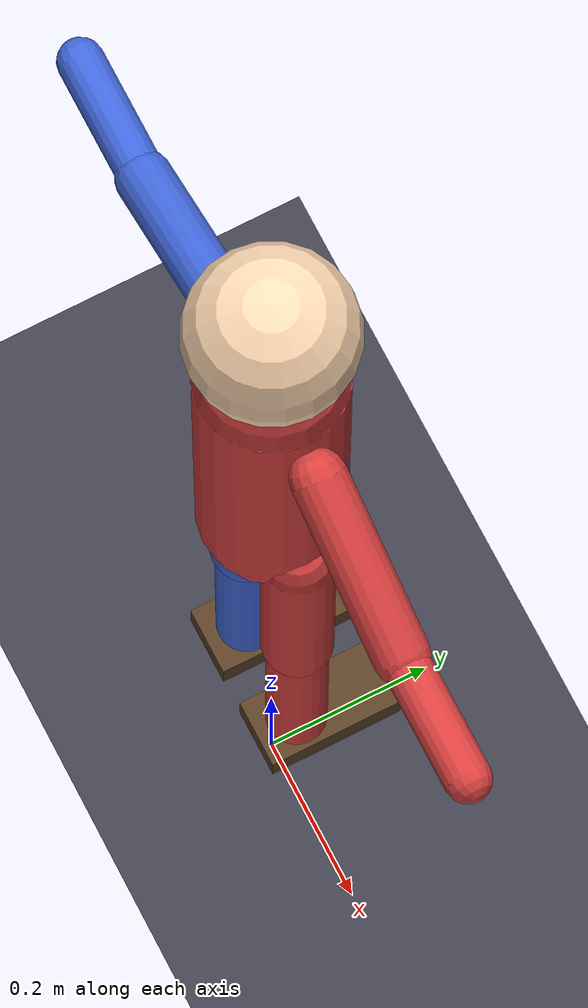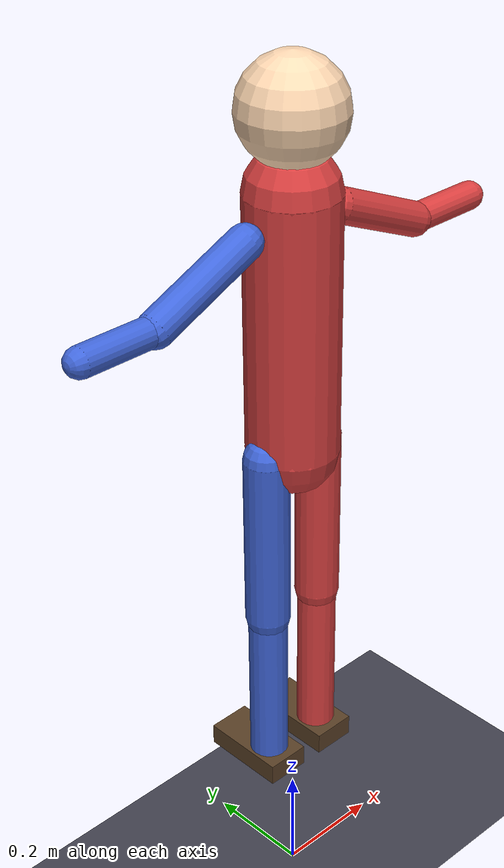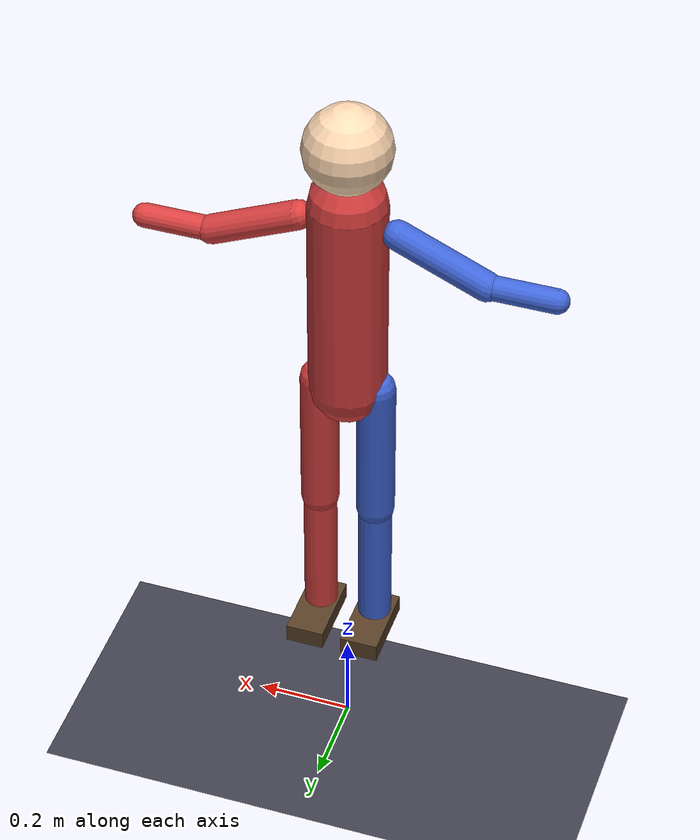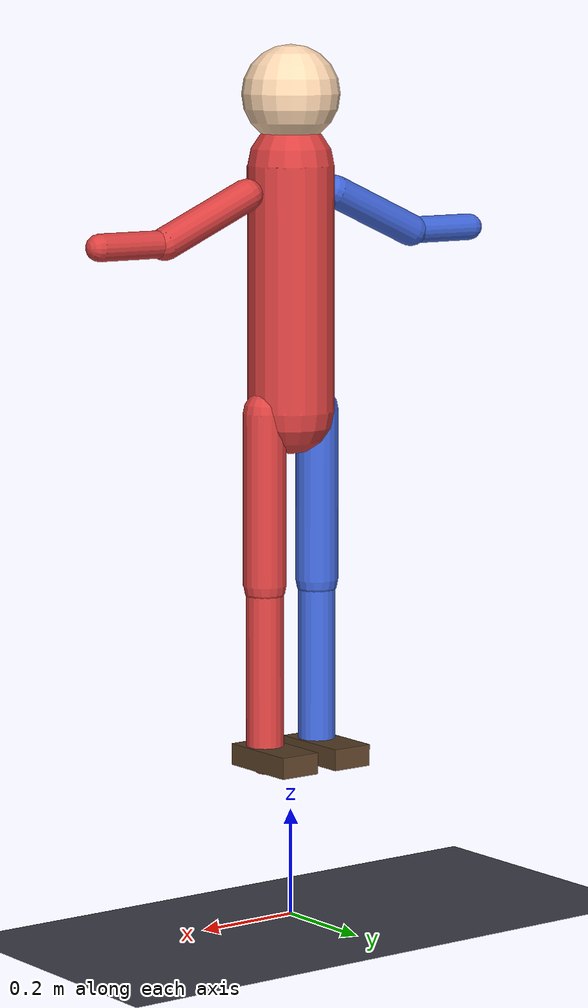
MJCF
<mujoco model="humanoid_stick">
  <option gravity="0 0 -9.81" timestep="0.005"/>
  <default>
    <joint damping="3" armature="0.1"/>
    <geom friction="0.8 0.02 0.02" condim="3"/>
  </default>
  <worldbody>
    <light pos="0 0 5" diffuse="0.9 0.9 0.9"/>
    <geom name="floor" type="plane" size="5 5 0.1" rgba="0.25 0.25 0.3 1"/>
    <body name="torso" pos="0 0 1.05">
      <freejoint name="root"/>
      <geom name="torso_geom" type="capsule" fromto="0 0 -0.1 0 0 0.35"
            size="0.08" rgba="0.85 0.25 0.25 1" mass="4"/>
      <geom name="head" type="sphere" pos="0 0 0.48" size="0.09"
            rgba="1 0.85 0.7 1" mass="0.8"/>
      <!-- Right arm -->
      <body name="r_upper_arm" pos="0.1 0 0.3">
        <joint name="r_shoulder" type="hinge" axis="0 1 0" range="-180 60"/>
        <geom type="capsule" fromto="0 0 0 0.18 0 -0.08" size="0.03"
              rgba="0.85 0.25 0.25 1" mass="0.4"/>
        <body name="r_forearm" pos="0.18 0 -0.08">
          <joint name="r_elbow" type="hinge" axis="0 1 0" range="-150 0"/>
          <geom type="capsule" fromto="0 0 0 0.14 0 0" size="0.025"
                rgba="0.85 0.25 0.25 1" mass="0.25"/>
        </body>
      </body>
      <!-- Left arm -->
      <body name="l_upper_arm" pos="-0.1 0 0.3">
        <joint name="l_shoulder" type="hinge" axis="0 1 0" range="-180 60"/>
        <geom type="capsule" fromto="0 0 0 -0.18 0 -0.08" size="0.03"
              rgba="0.25 0.4 0.85 1" mass="0.4"/>
        <body name="l_forearm" pos="-0.18 0 -0.08">
          <joint name="l_elbow" type="hinge" axis="0 1 0" range="-150 0"/>
          <geom type="capsule" fromto="0 0 0 -0.14 0 0" size="0.025"
                rgba="0.25 0.4 0.85 1" mass="0.25"/>
        </body>
      </body>
      <!-- Right leg -->
      <body name="r_thigh" pos="0.06 0 -0.1">
        <joint name="r_hip" type="hinge" axis="0 1 0" range="-30 120"/>
        <geom type="capsule" fromto="0 0 0 0 0 -0.32" size="0.04"
              rgba="0.85 0.25 0.25 1" mass="1.2"/>
        <body name="r_shin" pos="0 0 -0.32">
          <joint name="r_knee" type="hinge" axis="0 1 0" range="-130 0"/>
          <geom type="capsule" fromto="0 0 0 0 0 -0.32" size="0.035"
                rgba="0.85 0.25 0.25 1" mass="0.8"/>
          <geom name="r_foot" type="box" pos="0 0.03 -0.32"
                size="0.04 0.08 0.02" rgba="0.35 0.25 0.15 1" mass="0.3"/>
        </body>
      </body>
      <!-- Left leg -->
      <body name="l_thigh" pos="-0.06 0 -0.1">
        <joint name="l_hip" type="hinge" axis="0 1 0" range="-30 120"/>
        <geom type="capsule" fromto="0 0 0 0 0 -0.32" size="0.04"
              rgba="0.25 0.4 0.85 1" mass="1.2"/>
        <body name="l_shin" pos="0 0 -0.32">
          <joint name="l_knee" type="hinge" axis="0 1 0" range="-130 0"/>
          <geom type="capsule" fromto="0 0 0 0 0 -0.32" size="0.035"
                rgba="0.25 0.4 0.85 1" mass="0.8"/>
          <geom name="l_foot" type="box" pos="0 0.03 -0.32"
                size="0.04 0.08 0.02" rgba="0.35 0.25 0.15 1" mass="0.3"/>
        </body>
      </body>
    </body>
  </worldbody>
  <actuator>
    <motor name="r_hip_m" joint="r_hip" ctrlrange="-80 80" ctrllimited="true"/>
    <motor name="l_hip_m" joint="l_hip" ctrlrange="-80 80" ctrllimited="true"/>
    <motor name="r_knee_m" joint="r_knee" ctrlrange="-80 80" ctrllimited="true"/>
    <motor name="l_knee_m" joint="l_knee" ctrlrange="-80 80" ctrllimited="true"/>
    <motor name="r_shoulder_m" joint="r_shoulder" ctrlrange="-30 30" ctrllimited="true"/>
    <motor name="l_shoulder_m" joint="l_shoulder" ctrlrange="-30 30" ctrllimited="true"/>
  </actuator>
  <sensor>
    <framepos name="torso_pos" objtype="body" objname="torso"/>
    <framequat name="torso_quat" objtype="body" objname="torso"/>
    <framelinvel name="torso_vel" objtype="body" objname="torso"/>
    <jointpos name="r_hip_pos" joint="r_hip"/>
    <jointpos name="l_hip_pos" joint="l_hip"/>
    <jointpos name="r_knee_pos" joint="r_knee"/>
    <jointpos name="l_knee_pos" joint="l_knee"/>
    <actuatorfrc name="r_hip_frc" actuator="r_hip_m"/>
    <actuatorfrc name="l_hip_frc" actuator="l_hip_m"/>
  </sensor>
</mujoco>
